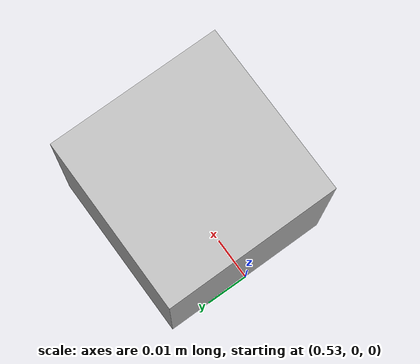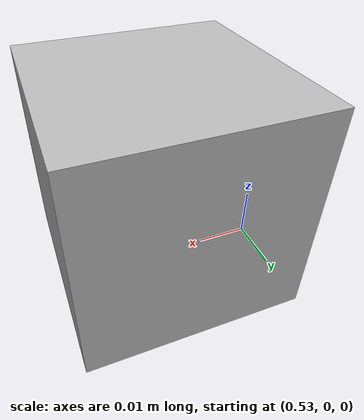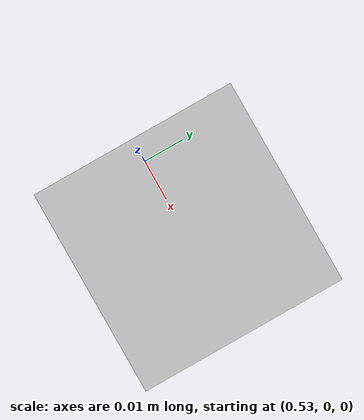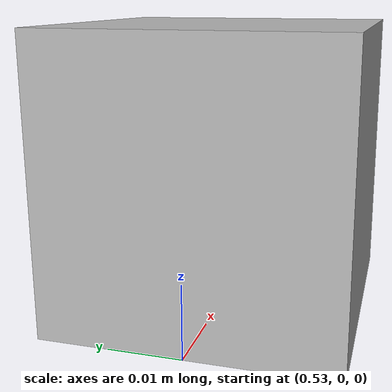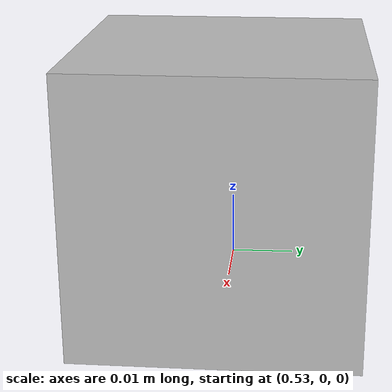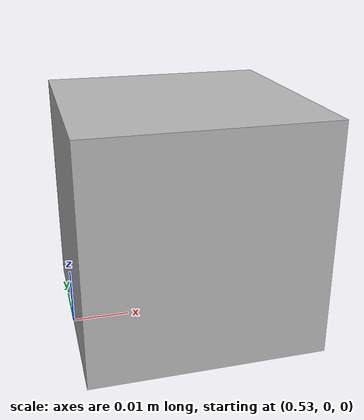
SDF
<?xml version="1.0"?>
<sdf version="1.7">
  <model name="pick_cube">
    <static>false</static>
    <pose>0.55 0.0 0.02 0 0 0</pose>

    <link name="link">
      <inertial>
        <mass>0.05</mass>
        <inertia>
          <ixx>1e-5</ixx><iyy>1e-5</iyy><izz>1e-5</izz>
          <ixy>0</ixy><ixz>0</ixz><iyz>0</iyz>
        </inertia>
      </inertial>

      <collision name="collision">
        <geometry>
          <box><size>0.04 0.04 0.04</size></box>
        </geometry>
      </collision>

      <visual name="visual">
        <geometry>
          <box><size>0.04 0.04 0.04</size></box>
        </geometry>
      </visual>
    </link>
  </model>
</sdf>
